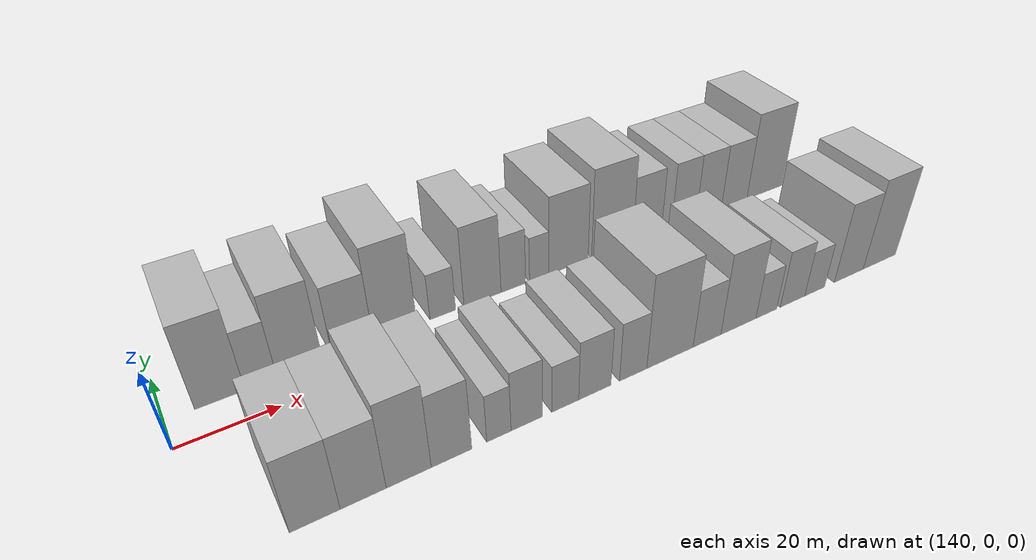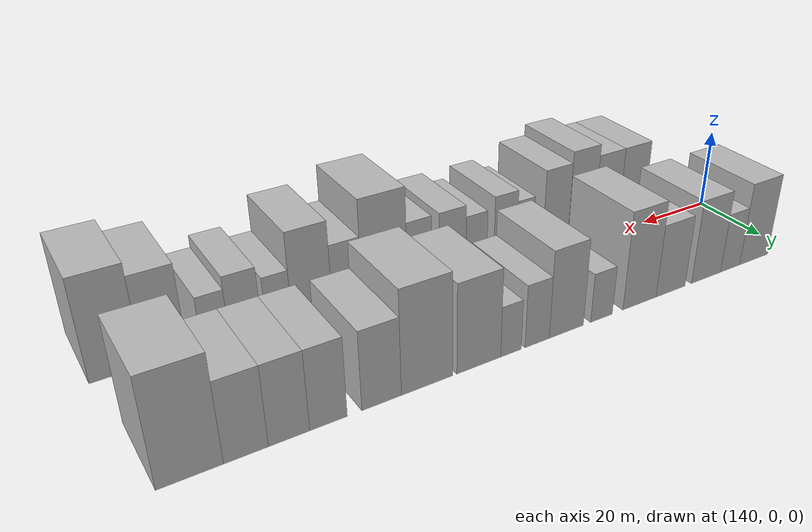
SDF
<sdf version="1.6">
 <world name="default">
  <model name="building_16">
   <static>1</static>
   <pose>150.4094 17.5000 0 0.000000 0.000000 1.570796</pose>
   <link name="link">
    <pose>0 0 10.50 0 0 0</pose>
    <collision name="collision"><geometry><box><size>20.0000 9.4727 21.0000</size></box></geometry></collision>
    <visual name="visual">
     <cast_shadows>0</cast_shadows>
     <geometry><box><size>20.0000 9.4727 21.0000</size></box></geometry>
     <material>
      <script>
       <uri>model://HANNAS_wall/materials/scripts</uri>
       <uri>model://HANNAS_wall/materials/textures</uri>
       <name>vrc/HANNAS_wall</name>
      </script>
     </material>
    </visual>
   </link>
  </model>
  <model name="building_17">
   <static>1</static>
   <pose>158.2649 17.5000 0 0.000000 0.000000 1.570796</pose>
   <link name="link">
    <pose>0 0 7.50 0 0 0</pose>
    <collision name="collision"><geometry><box><size>20.0000 6.2384 15.0000</size></box></geometry></collision>
    <visual name="visual">
     <cast_shadows>0</cast_shadows>
     <geometry><box><size>20.0000 6.2384 15.0000</size></box></geometry>
     <material>
      <script>
       <uri>model://HANNAS_wall/materials/scripts</uri>
       <uri>model://HANNAS_wall/materials/textures</uri>
       <name>vrc/HANNAS_wall</name>
      </script>
     </material>
    </visual>
   </link>
  </model>
  <model name="building_18">
   <static>1</static>
   <pose>166.0009 17.5000 0 0.000000 0.000000 1.570796</pose>
   <link name="link">
    <pose>0 0 10.50 0 0 0</pose>
    <collision name="collision"><geometry><box><size>20.0000 9.2335 21.0000</size></box></geometry></collision>
    <visual name="visual">
     <cast_shadows>0</cast_shadows>
     <geometry><box><size>20.0000 9.2335 21.0000</size></box></geometry>
     <material>
      <script>
       <uri>model://HANNAS_wall/materials/scripts</uri>
       <uri>model://HANNAS_wall/materials/textures</uri>
       <name>vrc/HANNAS_wall</name>
      </script>
     </material>
    </visual>
   </link>
  </model>
  <model name="building_19">
   <static>1</static>
   <pose>176.9947 17.5000 0 0.000000 0.000000 1.570796</pose>
   <link name="link">
    <pose>0 0 9.00 0 0 0</pose>
    <collision name="collision"><geometry><box><size>20.0000 8.7541 18.0000</size></box></geometry></collision>
    <visual name="visual">
     <cast_shadows>0</cast_shadows>
     <geometry><box><size>20.0000 8.7541 18.0000</size></box></geometry>
     <material>
      <script>
       <uri>model://HANNAS_wall/materials/scripts</uri>
       <uri>model://HANNAS_wall/materials/textures</uri>
       <name>vrc/HANNAS_wall</name>
      </script>
     </material>
    </visual>
   </link>
  </model>
  <model name="building_20">
   <static>1</static>
   <pose>186.1790 17.5000 0 0.000000 0.000000 1.570796</pose>
   <link name="link">
    <pose>0 0 12.00 0 0 0</pose>
    <collision name="collision"><geometry><box><size>20.0000 9.6145 24.0000</size></box></geometry></collision>
    <visual name="visual">
     <cast_shadows>0</cast_shadows>
     <geometry><box><size>20.0000 9.6145 24.0000</size></box></geometry>
     <material>
      <script>
       <uri>model://HANNAS_wall/materials/scripts</uri>
       <uri>model://HANNAS_wall/materials/textures</uri>
       <name>vrc/HANNAS_wall</name>
      </script>
     </material>
    </visual>
   </link>
  </model>
  <model name="building_21">
   <static>1</static>
   <pose>196.9758 17.5000 0 0.000000 0.000000 1.570796</pose>
   <link name="link">
    <pose>0 0 6.00 0 0 0</pose>
    <collision name="collision"><geometry><box><size>20.0000 5.9790 12.0000</size></box></geometry></collision>
    <visual name="visual">
     <cast_shadows>0</cast_shadows>
     <geometry><box><size>20.0000 5.9790 12.0000</size></box></geometry>
     <material>
      <script>
       <uri>model://HANNAS_wall/materials/scripts</uri>
       <uri>model://HANNAS_wall/materials/textures</uri>
       <name>vrc/HANNAS_wall</name>
      </script>
     </material>
    </visual>
   </link>
  </model>
  <model name="building_22">
   <static>1</static>
   <pose>206.4749 17.5000 0 0.000000 0.000000 1.570796</pose>
   <link name="link">
    <pose>0 0 10.50 0 0 0</pose>
    <collision name="collision"><geometry><box><size>20.0000 9.0193 21.0000</size></box></geometry></collision>
    <visual name="visual">
     <cast_shadows>0</cast_shadows>
     <geometry><box><size>20.0000 9.0193 21.0000</size></box></geometry>
     <material>
      <script>
       <uri>model://HANNAS_wall/materials/scripts</uri>
       <uri>model://HANNAS_wall/materials/textures</uri>
       <name>vrc/HANNAS_wall</name>
      </script>
     </material>
    </visual>
   </link>
  </model>
  <model name="building_23">
   <static>1</static>
   <pose>214.0780 17.5000 0 0.000000 0.000000 1.570796</pose>
   <link name="link">
    <pose>0 0 7.50 0 0 0</pose>
    <collision name="collision"><geometry><box><size>20.0000 6.1869 15.0000</size></box></geometry></collision>
    <visual name="visual">
     <cast_shadows>0</cast_shadows>
     <geometry><box><size>20.0000 6.1869 15.0000</size></box></geometry>
     <material>
      <script>
       <uri>model://HANNAS_wall/materials/scripts</uri>
       <uri>model://HANNAS_wall/materials/textures</uri>
       <name>vrc/HANNAS_wall</name>
      </script>
     </material>
    </visual>
   </link>
  </model>
  <model name="building_24">
   <static>1</static>
   <pose>220.7017 17.5000 0 0.000000 0.000000 1.570796</pose>
   <link name="link">
    <pose>0 0 6.00 0 0 0</pose>
    <collision name="collision"><geometry><box><size>20.0000 5.0606 12.0000</size></box></geometry></collision>
    <visual name="visual">
     <cast_shadows>0</cast_shadows>
     <geometry><box><size>20.0000 5.0606 12.0000</size></box></geometry>
     <material>
      <script>
       <uri>model://HANNAS_wall/materials/scripts</uri>
       <uri>model://HANNAS_wall/materials/textures</uri>
       <name>vrc/HANNAS_wall</name>
      </script>
     </material>
    </visual>
   </link>
  </model>
  <model name="building_25">
   <static>1</static>
   <pose>228.4509 17.5000 0 0.000000 0.000000 1.570796</pose>
   <link name="link">
    <pose>0 0 10.50 0 0 0</pose>
    <collision name="collision"><geometry><box><size>20.0000 10.4377 21.0000</size></box></geometry></collision>
    <visual name="visual">
     <cast_shadows>0</cast_shadows>
     <geometry><box><size>20.0000 10.4377 21.0000</size></box></geometry>
     <material>
      <script>
       <uri>model://HANNAS_wall/materials/scripts</uri>
       <uri>model://HANNAS_wall/materials/textures</uri>
       <name>vrc/HANNAS_wall</name>
      </script>
     </material>
    </visual>
   </link>
  </model>
  <model name="building_26">
   <static>1</static>
   <pose>240.4115 17.5000 0 0.000000 0.000000 1.570796</pose>
   <link name="link">
    <pose>0 0 12.00 0 0 0</pose>
    <collision name="collision"><geometry><box><size>20.0000 11.4836 24.0000</size></box></geometry></collision>
    <visual name="visual">
     <cast_shadows>0</cast_shadows>
     <geometry><box><size>20.0000 11.4836 24.0000</size></box></geometry>
     <material>
      <script>
       <uri>model://HANNAS_wall/materials/scripts</uri>
       <uri>model://HANNAS_wall/materials/textures</uri>
       <name>vrc/HANNAS_wall</name>
      </script>
     </material>
    </visual>
   </link>
  </model>
  <model name="building_27">
   <static>1</static>
   <pose>250.3855 17.5000 0 0.000000 0.000000 1.570796</pose>
   <link name="link">
    <pose>0 0 9.00 0 0 0</pose>
    <collision name="collision"><geometry><box><size>20.0000 8.4643 18.0000</size></box></geometry></collision>
    <visual name="visual">
     <cast_shadows>0</cast_shadows>
     <geometry><box><size>20.0000 8.4643 18.0000</size></box></geometry>
     <material>
      <script>
       <uri>model://HANNAS_wall/materials/scripts</uri>
       <uri>model://HANNAS_wall/materials/textures</uri>
       <name>vrc/HANNAS_wall</name>
      </script>
     </material>
    </visual>
   </link>
  </model>
  <model name="building_28">
   <static>1</static>
   <pose>261.4049 17.5000 0 0.000000 0.000000 1.570796</pose>
   <link name="link">
    <pose>0 0 9.00 0 0 0</pose>
    <collision name="collision"><geometry><box><size>20.0000 7.5746 18.0000</size></box></geometry></collision>
    <visual name="visual">
     <cast_shadows>0</cast_shadows>
     <geometry><box><size>20.0000 7.5746 18.0000</size></box></geometry>
     <material>
      <script>
       <uri>model://HANNAS_wall/materials/scripts</uri>
       <uri>model://HANNAS_wall/materials/textures</uri>
       <name>vrc/HANNAS_wall</name>
      </script>
     </material>
    </visual>
   </link>
  </model>
  <model name="building_29">
   <static>1</static>
   <pose>269.1881 17.5000 0 0.000000 0.000000 1.570796</pose>
   <link name="link">
    <pose>0 0 9.00 0 0 0</pose>
    <collision name="collision"><geometry><box><size>20.0000 7.9917 18.0000</size></box></geometry></collision>
    <visual name="visual">
     <cast_shadows>0</cast_shadows>
     <geometry><box><size>20.0000 7.9917 18.0000</size></box></geometry>
     <material>
      <script>
       <uri>model://HANNAS_wall/materials/scripts</uri>
       <uri>model://HANNAS_wall/materials/textures</uri>
       <name>vrc/HANNAS_wall</name>
      </script>
     </material>
    </visual>
   </link>
  </model>
  <model name="building_30">
   <static>1</static>
   <pose>277.3372 17.5000 0 0.000000 0.000000 1.570796</pose>
   <link name="link">
    <pose>0 0 9.00 0 0 0</pose>
    <collision name="collision"><geometry><box><size>20.0000 8.3066 18.0000</size></box></geometry></collision>
    <visual name="visual">
     <cast_shadows>0</cast_shadows>
     <geometry><box><size>20.0000 8.3066 18.0000</size></box></geometry>
     <material>
      <script>
       <uri>model://HANNAS_wall/materials/scripts</uri>
       <uri>model://HANNAS_wall/materials/textures</uri>
       <name>vrc/HANNAS_wall</name>
      </script>
     </material>
    </visual>
   </link>
  </model>
  <model name="building_31">
   <static>1</static>
   <pose>287.4470 17.5000 0 0.000000 0.000000 1.570796</pose>
   <link name="link">
    <pose>0 0 12.00 0 0 0</pose>
    <collision name="collision"><geometry><box><size>20.0000 11.9131 24.0000</size></box></geometry></collision>
    <visual name="visual">
     <cast_shadows>0</cast_shadows>
     <geometry><box><size>20.0000 11.9131 24.0000</size></box></geometry>
     <material>
      <script>
       <uri>model://HANNAS_wall/materials/scripts</uri>
       <uri>model://HANNAS_wall/materials/textures</uri>
       <name>vrc/HANNAS_wall</name>
      </script>
     </material>
    </visual>
   </link>
  </model>
  <model name="building_48">
   <static>1</static>
   <pose>157.3040 -17.5000 0 0.000000 0.000000 1.570796</pose>
   <link name="link">
    <pose>0 0 9.00 0 0 0</pose>
    <collision name="collision"><geometry><box><size>20.0000 8.7045 18.0000</size></box></geometry></collision>
    <visual name="visual">
     <cast_shadows>0</cast_shadows>
     <geometry><box><size>20.0000 8.7045 18.0000</size></box></geometry>
     <material>
      <script>
       <uri>model://HANNAS_wall/materials/scripts</uri>
       <uri>model://HANNAS_wall/materials/textures</uri>
       <name>vrc/HANNAS_wall</name>
      </script>
     </material>
    </visual>
   </link>
  </model>
  <model name="building_49">
   <static>1</static>
   <pose>165.7661 -17.5000 0 0.000000 0.000000 1.570796</pose>
   <link name="link">
    <pose>0 0 9.00 0 0 0</pose>
    <collision name="collision"><geometry><box><size>20.0000 8.2197 18.0000</size></box></geometry></collision>
    <visual name="visual">
     <cast_shadows>0</cast_shadows>
     <geometry><box><size>20.0000 8.2197 18.0000</size></box></geometry>
     <material>
      <script>
       <uri>model://HANNAS_wall/materials/scripts</uri>
       <uri>model://HANNAS_wall/materials/textures</uri>
       <name>vrc/HANNAS_wall</name>
      </script>
     </material>
    </visual>
   </link>
  </model>
  <model name="building_50">
   <static>1</static>
   <pose>174.1009 -17.5000 0 0.000000 0.000000 1.570796</pose>
   <link name="link">
    <pose>0 0 10.50 0 0 0</pose>
    <collision name="collision"><geometry><box><size>20.0000 8.4498 21.0000</size></box></geometry></collision>
    <visual name="visual">
     <cast_shadows>0</cast_shadows>
     <geometry><box><size>20.0000 8.4498 21.0000</size></box></geometry>
     <material>
      <script>
       <uri>model://HANNAS_wall/materials/scripts</uri>
       <uri>model://HANNAS_wall/materials/textures</uri>
       <name>vrc/HANNAS_wall</name>
      </script>
     </material>
    </visual>
   </link>
  </model>
  <model name="building_51">
   <static>1</static>
   <pose>182.2925 -17.5000 0 0.000000 0.000000 1.570796</pose>
   <link name="link">
    <pose>0 0 9.00 0 0 0</pose>
    <collision name="collision"><geometry><box><size>20.0000 7.9334 18.0000</size></box></geometry></collision>
    <visual name="visual">
     <cast_shadows>0</cast_shadows>
     <geometry><box><size>20.0000 7.9334 18.0000</size></box></geometry>
     <material>
      <script>
       <uri>model://HANNAS_wall/materials/scripts</uri>
       <uri>model://HANNAS_wall/materials/textures</uri>
       <name>vrc/HANNAS_wall</name>
      </script>
     </material>
    </visual>
   </link>
  </model>
  <model name="building_52">
   <static>1</static>
   <pose>191.7705 -17.5000 0 0.000000 0.000000 1.570796</pose>
   <link name="link">
    <pose>0 0 6.00 0 0 0</pose>
    <collision name="collision"><geometry><box><size>20.0000 5.0225 12.0000</size></box></geometry></collision>
    <visual name="visual">
     <cast_shadows>0</cast_shadows>
     <geometry><box><size>20.0000 5.0225 12.0000</size></box></geometry>
     <material>
      <script>
       <uri>model://HANNAS_wall/materials/scripts</uri>
       <uri>model://HANNAS_wall/materials/textures</uri>
       <name>vrc/HANNAS_wall</name>
      </script>
     </material>
    </visual>
   </link>
  </model>
  <model name="building_53">
   <static>1</static>
   <pose>197.6247 -17.5000 0 0.000000 0.000000 1.570796</pose>
   <link name="link">
    <pose>0 0 7.50 0 0 0</pose>
    <collision name="collision"><geometry><box><size>20.0000 6.6860 15.0000</size></box></geometry></collision>
    <visual name="visual">
     <cast_shadows>0</cast_shadows>
     <geometry><box><size>20.0000 6.6860 15.0000</size></box></geometry>
     <material>
      <script>
       <uri>model://HANNAS_wall/materials/scripts</uri>
       <uri>model://HANNAS_wall/materials/textures</uri>
       <name>vrc/HANNAS_wall</name>
      </script>
     </material>
    </visual>
   </link>
  </model>
  <model name="building_54">
   <static>1</static>
   <pose>205.9553 -17.5000 0 0.000000 0.000000 1.570796</pose>
   <link name="link">
    <pose>0 0 6.00 0 0 0</pose>
    <collision name="collision"><geometry><box><size>20.0000 5.9751 12.0000</size></box></geometry></collision>
    <visual name="visual">
     <cast_shadows>0</cast_shadows>
     <geometry><box><size>20.0000 5.9751 12.0000</size></box></geometry>
     <material>
      <script>
       <uri>model://HANNAS_wall/materials/scripts</uri>
       <uri>model://HANNAS_wall/materials/textures</uri>
       <name>vrc/HANNAS_wall</name>
      </script>
     </material>
    </visual>
   </link>
  </model>
  <model name="building_55">
   <static>1</static>
   <pose>212.6326 -17.5000 0 0.000000 0.000000 1.570796</pose>
   <link name="link">
    <pose>0 0 7.50 0 0 0</pose>
    <collision name="collision"><geometry><box><size>20.0000 7.3793 15.0000</size></box></geometry></collision>
    <visual name="visual">
     <cast_shadows>0</cast_shadows>
     <geometry><box><size>20.0000 7.3793 15.0000</size></box></geometry>
     <material>
      <script>
       <uri>model://HANNAS_wall/materials/scripts</uri>
       <uri>model://HANNAS_wall/materials/textures</uri>
       <name>vrc/HANNAS_wall</name>
      </script>
     </material>
    </visual>
   </link>
  </model>
  <model name="building_56">
   <static>1</static>
   <pose>221.5893 -17.5000 0 0.000000 0.000000 1.570796</pose>
   <link name="link">
    <pose>0 0 7.50 0 0 0</pose>
    <collision name="collision"><geometry><box><size>20.0000 6.5341 15.0000</size></box></geometry></collision>
    <visual name="visual">
     <cast_shadows>0</cast_shadows>
     <geometry><box><size>20.0000 6.5341 15.0000</size></box></geometry>
     <material>
      <script>
       <uri>model://HANNAS_wall/materials/scripts</uri>
       <uri>model://HANNAS_wall/materials/textures</uri>
       <name>vrc/HANNAS_wall</name>
      </script>
     </material>
    </visual>
   </link>
  </model>
  <model name="building_57">
   <static>1</static>
   <pose>230.6643 -17.5000 0 0.000000 0.000000 1.570796</pose>
   <link name="link">
    <pose>0 0 12.00 0 0 0</pose>
    <collision name="collision"><geometry><box><size>20.0000 11.6160 24.0000</size></box></geometry></collision>
    <visual name="visual">
     <cast_shadows>0</cast_shadows>
     <geometry><box><size>20.0000 11.6160 24.0000</size></box></geometry>
     <material>
      <script>
       <uri>model://HANNAS_wall/materials/scripts</uri>
       <uri>model://HANNAS_wall/materials/textures</uri>
       <name>vrc/HANNAS_wall</name>
      </script>
     </material>
    </visual>
   </link>
  </model>
  <model name="building_58">
   <static>1</static>
   <pose>240.1064 -17.5000 0 0.000000 0.000000 1.570796</pose>
   <link name="link">
    <pose>0 0 7.50 0 0 0</pose>
    <collision name="collision"><geometry><box><size>20.0000 7.2682 15.0000</size></box></geometry></collision>
    <visual name="visual">
     <cast_shadows>0</cast_shadows>
     <geometry><box><size>20.0000 7.2682 15.0000</size></box></geometry>
     <material>
      <script>
       <uri>model://HANNAS_wall/materials/scripts</uri>
       <uri>model://HANNAS_wall/materials/textures</uri>
       <name>vrc/HANNAS_wall</name>
      </script>
     </material>
    </visual>
   </link>
  </model>
  <model name="building_59">
   <static>1</static>
   <pose>248.5148 -17.5000 0 0.000000 0.000000 1.570796</pose>
   <link name="link">
    <pose>0 0 10.50 0 0 0</pose>
    <collision name="collision"><geometry><box><size>20.0000 9.5486 21.0000</size></box></geometry></collision>
    <visual name="visual">
     <cast_shadows>0</cast_shadows>
     <geometry><box><size>20.0000 9.5486 21.0000</size></box></geometry>
     <material>
      <script>
       <uri>model://HANNAS_wall/materials/scripts</uri>
       <uri>model://HANNAS_wall/materials/textures</uri>
       <name>vrc/HANNAS_wall</name>
      </script>
     </material>
    </visual>
   </link>
  </model>
  <model name="building_60">
   <static>1</static>
   <pose>256.2137 -17.5000 0 0.000000 0.000000 1.570796</pose>
   <link name="link">
    <pose>0 0 6.00 0 0 0</pose>
    <collision name="collision"><geometry><box><size>20.0000 5.8492 12.0000</size></box></geometry></collision>
    <visual name="visual">
     <cast_shadows>0</cast_shadows>
     <geometry><box><size>20.0000 5.8492 12.0000</size></box></geometry>
     <material>
      <script>
       <uri>model://HANNAS_wall/materials/scripts</uri>
       <uri>model://HANNAS_wall/materials/textures</uri>
       <name>vrc/HANNAS_wall</name>
      </script>
     </material>
    </visual>
   </link>
  </model>
  <model name="building_61">
   <static>1</static>
   <pose>263.7192 -17.5000 0 0.000000 0.000000 1.570796</pose>
   <link name="link">
    <pose>0 0 7.50 0 0 0</pose>
    <collision name="collision"><geometry><box><size>20.0000 7.1619 15.0000</size></box></geometry></collision>
    <visual name="visual">
     <cast_shadows>0</cast_shadows>
     <geometry><box><size>20.0000 7.1619 15.0000</size></box></geometry>
     <material>
      <script>
       <uri>model://HANNAS_wall/materials/scripts</uri>
       <uri>model://HANNAS_wall/materials/textures</uri>
       <name>vrc/HANNAS_wall</name>
      </script>
     </material>
    </visual>
   </link>
  </model>
  <model name="building_62">
   <static>1</static>
   <pose>270.2654 -17.5000 0 0.000000 0.000000 1.570796</pose>
   <link name="link">
    <pose>0 0 6.00 0 0 0</pose>
    <collision name="collision"><geometry><box><size>20.0000 5.9303 12.0000</size></box></geometry></collision>
    <visual name="visual">
     <cast_shadows>0</cast_shadows>
     <geometry><box><size>20.0000 5.9303 12.0000</size></box></geometry>
     <material>
      <script>
       <uri>model://HANNAS_wall/materials/scripts</uri>
       <uri>model://HANNAS_wall/materials/textures</uri>
       <name>vrc/HANNAS_wall</name>
      </script>
     </material>
    </visual>
   </link>
  </model>
  <model name="building_63">
   <static>1</static>
   <pose>280.7605 -17.5000 0 0.000000 0.000000 1.570796</pose>
   <link name="link">
    <pose>0 0 10.50 0 0 0</pose>
    <collision name="collision"><geometry><box><size>20.0000 9.0599 21.0000</size></box></geometry></collision>
    <visual name="visual">
     <cast_shadows>0</cast_shadows>
     <geometry><box><size>20.0000 9.0599 21.0000</size></box></geometry>
     <material>
      <script>
       <uri>model://HANNAS_wall/materials/scripts</uri>
       <uri>model://HANNAS_wall/materials/textures</uri>
       <name>vrc/HANNAS_wall</name>
      </script>
     </material>
    </visual>
   </link>
  </model>
  <model name="building_64">
   <static>1</static>
   <pose>290.5507 -17.5000 0 0.000000 0.000000 1.570796</pose>
   <link name="link">
    <pose>0 0 12.00 0 0 0</pose>
    <collision name="collision"><geometry><box><size>20.0000 10.5205 24.0000</size></box></geometry></collision>
    <visual name="visual">
     <cast_shadows>0</cast_shadows>
     <geometry><box><size>20.0000 10.5205 24.0000</size></box></geometry>
     <material>
      <script>
       <uri>model://HANNAS_wall/materials/scripts</uri>
       <uri>model://HANNAS_wall/materials/textures</uri>
       <name>vrc/HANNAS_wall</name>
      </script>
     </material>
    </visual>
   </link>
  </model>
 </world>
</sdf>
